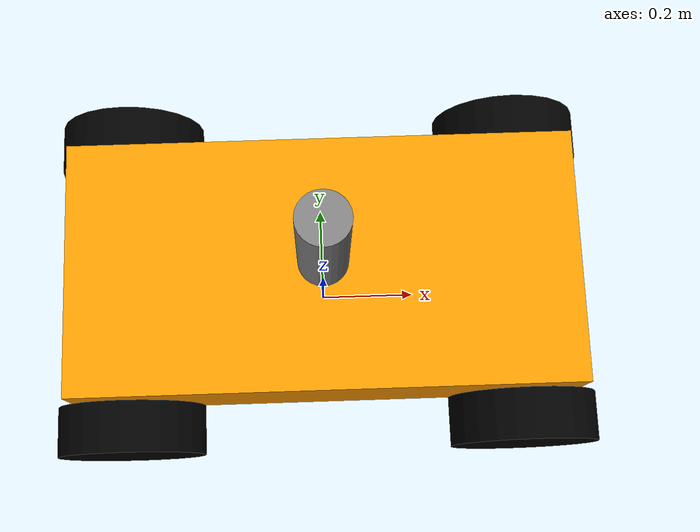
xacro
<?xml version="1.0"?>
<robot name="car4" xmlns:xacro="http://www.ros.org/wiki/xacro">

    <xacro:property name="base_length" value="1.0" />
    <xacro:property name="base_width" value="0.5" />
    <xacro:property name="base_height" value="0.2" />
    <xacro:property name="wheel_radius" value="0.15" />
    <xacro:property name="wheel_length" value="0.1" />
    <xacro:property name="column_radius" value="0.05" />
    <xacro:property name="column_length" value="0.3" />

    <xacro:macro name="box_inertia" params="m l w h xyz rpy">
        <inertial>
            <origin xyz="${xyz}" rpy="${rpy}" />
            <mass value="${m}" />
            <inertia ixx="${(m/12)*(h*h + l*l)}" ixy="0.0" ixz="0.0"
                     iyy="${(m/12)*(w*w + l*l)}" iyz="0.0"
                     izz="${(m/12)*(w*w + h*h)}"/>
        </inertial>
    </xacro:macro>

     <xacro:macro name="wheel_inertia" params="m r l xyz rpy">
        <inertial>
            <origin xyz="${xyz}" rpy="${rpy}" />
            <mass value="${m}" />
            <inertia ixx="${(m/12)*(3*r*r + l*l)}" ixy="0.0" ixz="0.0"
                     iyy="${(m/12)*(3*r*r + l*l)}" iyz="0.0"
                     izz="${(m/2)*(r*r)}"/>
        </inertial>
    </xacro:macro>

    <xacro:macro name="column_inertia" params="m r l xyz rpy">
        <inertial>
            <origin xyz="${xyz}" rpy="${rpy}" />
            <mass value="${m}" />
            <inertia ixx="${(m/12)*(3*r*r + l*l)}" ixy="0.0" ixz="0.0"
                     iyy="${(m/12)*(3*r*r + l*l)}" iyz="0.0"
                     izz="${(m/2)*(r*r)}"/>
        </inertial>
    </xacro:macro>

    <material name="orange">
        <color rgba="1 0.6 0 1" />
    </material>

    <material name="grey">
        <color rgba="0.5 0.5 0.5 1" />
    </material>

    <material name="black">
        <color rgba="0.0 0.0 0.0 1" />
    </material>

    <material name="red">
        <color rgba="1.0 0.0 0.0 1" />
    </material>

     <material name="green">
        <color rgba="0.0 1.0 0.0 1" />
    </material>

    <link name="base_footprint" />

    <link name="base_link">
        <visual>
            <geometry>
                <box size="${base_length} ${base_width} ${base_height}"/>
            </geometry>
            <origin xyz="0 0 0.1" rpy="0 0 0"/>
            <material name="orange" />
        </visual>
        <collision>
            <geometry>
                <box size="${base_length} ${base_width} ${base_height}"/>
            </geometry>
            <origin xyz="0 0 0.1" rpy="0 0 0"/>
        </collision>
        <xacro:box_inertia m="2.0" l="${base_length}" w="${base_width}" h="${base_height}"
                            xyz="0 0 0.1"  rpy="0 0 0" />

    </link>

    <joint name="base_joint" type="fixed">
        <origin xyz="0.0 0.0 0.15" rpy="0.0 0.0 0.0"/>
        <parent link="base_footprint"/>
        <child link="base_link"/>
    </joint>

    <link name="second_link">
        <visual>
            <geometry>
                <cylinder radius="${column_radius}" length="${column_length}"/>
            </geometry>
            <origin xyz="0 0 0.15" rpy="0 0 0" />
            <material name="grey" />
        </visual>
        <collision>
            <geometry>
                <cylinder radius="${column_radius}" length="${column_length}"/>
            </geometry>
            <origin xyz="0 0 0.15" rpy="0 0 0" />
        </collision>
        <xacro:wheel_inertia m="0.3" r="${column_radius}" l="${column_length}"
                            xyz="0 0 0.15"  rpy="0.0 0.0 0.0" />
    </link>

    <joint name="base_second_joint" type="fixed">
        <origin xyz="0.0 0.0 0.2" rpy="0.0 0.0 0.0"/>
        <parent link="base_link"/>
        <child link="second_link"/>
    </joint>

    <link name="rear_right_wheel_link">
        <visual>
            <geometry>
                <cylinder radius="${wheel_radius}" length="${wheel_length}"/>
            </geometry>
            <origin xyz="0.0 0.0 0.0" rpy="1.57 0.0 0.0"/>
            <material name="black" />
        </visual>
        <collision>
            <geometry>
                <cylinder radius="${wheel_radius}" length="${wheel_length}"/>
            </geometry>
            <origin xyz="0.0 0.0 0.0" rpy="1.57 0.0 0.0"/>
        </collision>
        <xacro:wheel_inertia m="0.3" r="${wheel_radius}" l="${wheel_length}"
                            xyz="0.0 0.0 0.0"  rpy="1.57 0.0 0.0" />
    </link>

    <joint name="base_rear_right_wheel_joint" type="continuous">
        <origin xyz="-0.4 -0.3 0.0" rpy="0.0 0.0 0.0"/>
        <parent link="base_link"/>
        <child link="rear_right_wheel_link"/>
        <axis xyz="0.0 1.0 0.0"/>
    </joint>

    <link name="rear_left_wheel_link">
        <visual>
            <geometry>
                <cylinder radius="${wheel_radius}" length="${wheel_length}"/>
            </geometry>
            <origin xyz="0.0 0.0 0.0" rpy="1.57 0.0 0.0"/>
            <material name="black" />
        </visual>
        <collision>
            <geometry>
                <cylinder radius="${wheel_radius}" length="${wheel_length}"/>
            </geometry>
            <origin xyz="0.0 0.0 0.0" rpy="1.57 0.0 0.0"/>
        </collision>
        <xacro:wheel_inertia m="0.3" r="${wheel_radius}" l="${wheel_length}"
                            xyz="0.0 0.0 0.0"  rpy="1.57 0.0 0.0" />
    </link>

    <joint name="base_rear_left_wheel_joint" type="continuous">
        <origin xyz="-0.4 0.3 0.0" rpy="0.0 0.0 0.0"/>
        <parent link="base_link"/>
        <child link="rear_left_wheel_link"/>
        <axis xyz="0.0 1.0 0.0"/>
    </joint>

    <link name="front_right_wheel_link">
        <visual>
            <geometry>
                <cylinder radius="${wheel_radius}" length="${wheel_length}"/>
            </geometry>
            <origin xyz="0.0 0.0 0.0" rpy="1.57 0.0 0.0"/>
            <material name="black" />
        </visual>
        <collision>
            <geometry>
                <cylinder radius="${wheel_radius}" length="${wheel_length}"/>
            </geometry>
            <origin xyz="0.0 0.0 0.0" rpy="1.57 0.0 0.0"/>
        </collision>
        <xacro:wheel_inertia m="0.3" r="${wheel_radius}" l="${wheel_length}"
                            xyz="0.0 0.0 0.0"  rpy="1.57 0.0 0.0" />
    </link>

    <joint name="base_front_right_wheel_joint" type="continuous">
        <origin xyz="0.4 -0.3 0.0" rpy="0.0 0.0 0.0"/>
        <parent link="base_link"/>
        <child link="front_right_wheel_link"/>
        <axis xyz="0.0 1.0 0.0"/>
    </joint>

    <link name="front_left_wheel_link">
        <visual>
            <geometry>
                <cylinder radius="${wheel_radius}" length="${wheel_length}"/>
            </geometry>
            <origin xyz="0.0 0.0 0.0" rpy="1.57 0.0 0.0"/>
            <material name="black" />
        </visual>
        <collision>
            <geometry>
                <cylinder radius="${wheel_radius}" length="${wheel_length}"/>
            </geometry>
            <origin xyz="0.0 0.0 0.0" rpy="1.57 0.0 0.0"/>
        </collision>
        <xacro:wheel_inertia m="0.3" r="${wheel_radius}" l="${wheel_length}"
                            xyz="0.0 0.0 0.0"  rpy="1.57 0.0 0.0" />
    </link>

    <joint name="base_front_left_wheel_joint" type="continuous">
        <origin xyz="0.4 0.3 0.0" rpy="0.0 0.0 0.0"/>
        <parent link="base_link"/>
        <child link="front_left_wheel_link"/>
        <axis xyz="0.0 1.0 0.0"/>
    </joint>

</robot>
